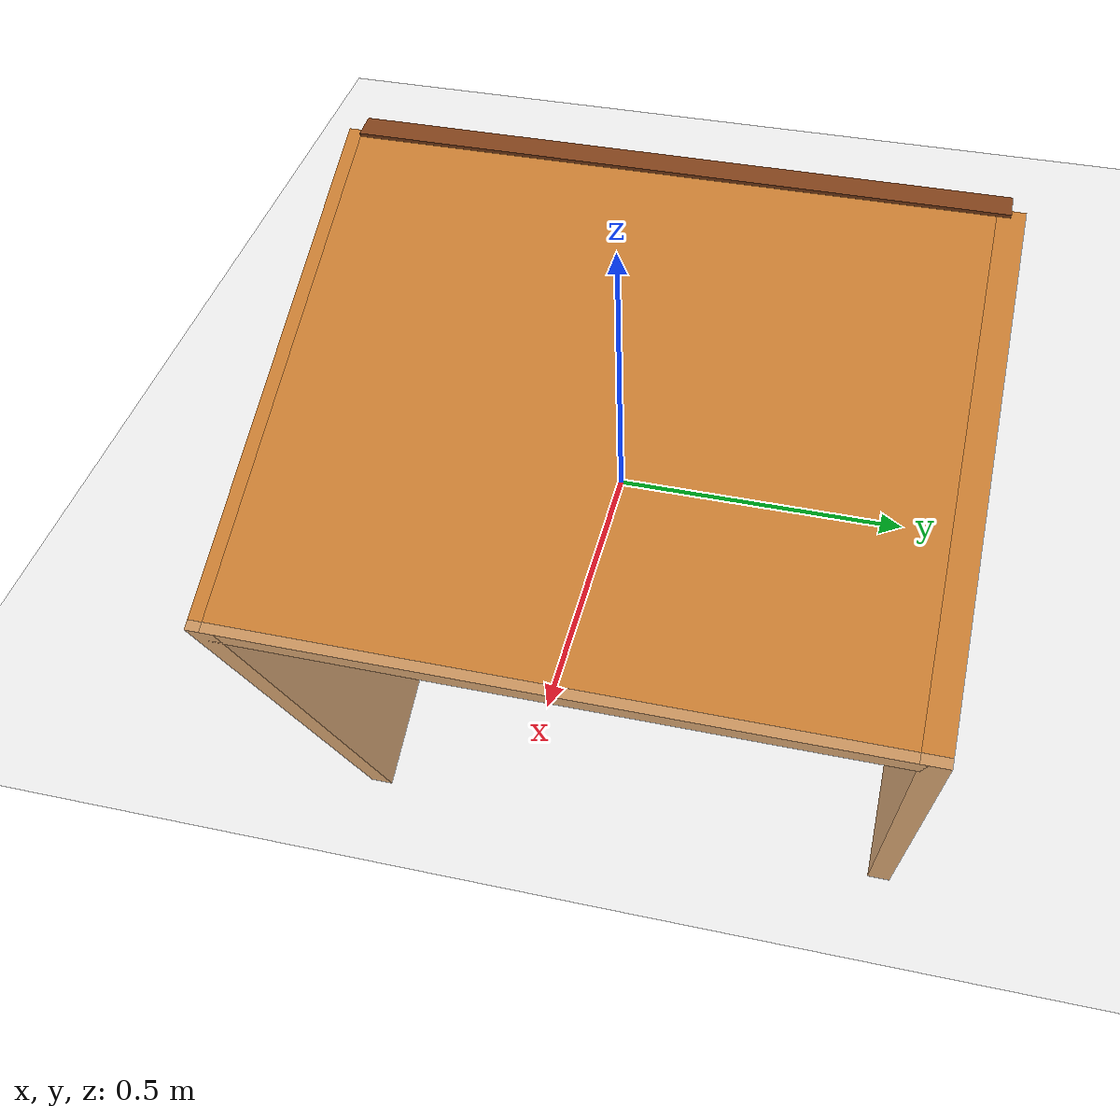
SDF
<?xml version='1.0'?>
<sdf version='1.9'>
  <world name='empty'>
    <physics name='1ms' type='ignored'>
      <max_step_size>0.001</max_step_size>
      <real_time_factor>1</real_time_factor>
      <real_time_update_rate>1000</real_time_update_rate>
    </physics>
    <plugin name='gz::sim::systems::Physics' filename='ignition-gazebo-physics-system' />
    <plugin name='gz::sim::systems::UserCommands' filename='ignition-gazebo-user-commands-system' />
    <plugin name='gz::sim::systems::SceneBroadcaster'
      filename='ignition-gazebo-scene-broadcaster-system' />
    <plugin name='gz::sim::systems::Contact' filename='ignition-gazebo-contact-system' />
    <gravity>0 0 -9.8</gravity>
    <magnetic_field>6e-06 2.3e-05 -4.2e-05</magnetic_field>
    <atmosphere type='adiabatic' />
    <scene>
      <ambient>0.4 0.4 0.4 1</ambient>
      <background>0.7 0.7 0.7 1</background>
      <shadows>true</shadows>
    </scene>

    <model name='ground_plane'>
      <static>true</static>
      <link name='link'>
        <collision name='collision'>
          <geometry>
            <plane>
              <normal>0 0 1</normal>
              <size>100 100</size>
            </plane>
          </geometry>
          <surface>
            <friction>
              <ode />
            </friction>
            <bounce />
            <contact />
          </surface>
        </collision>
        <visual name='visual'>
          <geometry>
            <plane>
              <normal>0 0 1</normal>
              <size>100 100</size>
            </plane>
          </geometry>
          <material>
            <ambient>0.8 0.8 0.8 1</ambient>
            <diffuse>0.8 0.8 0.8 1</diffuse>
            <specular>0.8 0.8 0.8 1</specular>
          </material>
        </visual>
        <pose>0 0 0 0 -0 0</pose>
        <inertial>
          <pose>0 0 0 0 -0 0</pose>
          <mass>1</mass>
          <inertia>
            <ixx>1</ixx>
            <ixy>0</ixy>
            <ixz>0</ixz>
            <iyy>1</iyy>
            <iyz>0</iyz>
            <izz>1</izz>
          </inertia>
        </inertial>
        <enable_wind>false</enable_wind>
      </link>
      <pose>0 0 0 0 -0 0</pose>
      <self_collide>false</self_collide>
    </model>

    <model name='Rampa'>
      <pose>0 0 0.15 0 0.3732 0</pose>
      <link name='Topo'>
        <inertial>
          <inertia>
            <ixx>0.16666</ixx>
            <ixy>0</ixy>
            <ixz>0</ixz>
            <iyy>0.16666</iyy>
            <iyz>0</iyz>
            <izz>0.16666</izz>
          </inertia>
          <mass>1</mass>
          <pose>0 0 0 0 -0 0</pose>
        </inertial>
        <collision name='Topo_collision'>
          <geometry>
            <box>
              <size>1 1.2 0.05</size>
            </box>
          </geometry>
          <surface>
            <friction>
              <ode />
            </friction>
            <bounce />
            <contact />
          </surface>
        </collision>
        <visual name='Topo_visual'>
          <geometry>
            <box>
              <size>1 1.2 0.05</size>
            </box>
          </geometry>
          <material>
            <ambient>0.8 0.5 0.2 1</ambient>
            <diffuse>0.8 0.5 0.2 1</diffuse>
            <specular>0.4 0.2 0.1 1</specular>
          </material>
        </visual>
        <pose>0 0 0 0 -0 0</pose>
        <enable_wind>false</enable_wind>
      </link>
      <static>true</static>
      <self_collide>false</self_collide>

      <link name='Lad1'>
        <pose relative_to='Topo'>0 0.6 -0.575 1.57 0 0</pose>
        <inertial>
          <inertia>
            <ixx>0.16666</ixx>
            <ixy>0</ixy>
            <ixz>0</ixz>
            <iyy>0.16666</iyy>
            <iyz>0</iyz>
            <izz>0.16666</izz>
          </inertia>
          <mass>1</mass>
          <pose>0 0 0 0 -0 0</pose>
        </inertial>
        <collision name='Lad1_collision'>
          <geometry>
            <box>
              <size>1 1.2 0.05</size>
            </box>
          </geometry>
          <surface>
            <friction>
              <ode />
            </friction>
            <bounce />
            <contact />
          </surface>
        </collision>
        <visual name='Lad1_visual'>
          <geometry>
            <box>
              <size>1 1.2 0.05</size>
            </box>
          </geometry>
          <material>
            <ambient>0.8 0.5 0.2 1</ambient>
            <diffuse>0.8 0.5 0.2 1</diffuse>
            <specular>0.4 0.2 0.1 1</specular>
          </material>
        </visual>
        <pose>0 0 0 0 -0 0</pose>
        <enable_wind>false</enable_wind>
      </link>

      <link name='Lad2'>
        <pose relative_to='Topo'>0 -0.6 -0.575 1.57 0 0</pose>
        <inertial>
          <inertia>
            <ixx>0.16666</ixx>
            <ixy>0</ixy>
            <ixz>0</ixz>
            <iyy>0.16666</iyy>
            <iyz>0</iyz>
            <izz>0.16666</izz>
          </inertia>
          <mass>1</mass>
          <pose>0 0 0 0 -0 0</pose>
        </inertial>
        <collision name='Lad2_collision'>
          <geometry>
            <box>
              <size>1 1.2 0.05</size>
            </box>
          </geometry>
          <surface>
            <friction>
              <ode />
            </friction>
            <bounce />
            <contact />
          </surface>
        </collision>
        <visual name='Lad2_visual'>
          <geometry>
            <box>
              <size>1 1.2 0.05</size>
            </box>
          </geometry>
          <material>
            <ambient>0.8 0.5 0.2 1</ambient>
            <diffuse>0.8 0.5 0.2 1</diffuse>
            <specular>0.4 0.2 0.1 1</specular>
          </material>
        </visual>
        <pose>0 0 0 0 -0 0</pose>
        <enable_wind>false</enable_wind>
      </link>

      <link name='Fre'>
        <pose relative_to='Topo'>-0.35 0 -0.45 0 -1.9 0</pose>
        <inertial>
          <inertia>
            <ixx>0.16666</ixx>
            <ixy>0</ixy>
            <ixz>0</ixz>
            <iyy>0.16666</iyy>
            <iyz>0</iyz>
            <izz>0.16666</izz>
          </inertia>
          <mass>1</mass>
          <pose>0 0 0 0 -0 0</pose>
        </inertial>
        <collision name='Fre_collision'>
          <geometry>
            <box>
              <size>1 1.2 0.05</size>
            </box>
          </geometry>
          <surface>
            <friction>
              <ode />
            </friction>
            <bounce />
            <contact />
          </surface>
        </collision>
        <visual name='Fre_visual'>
          <geometry>
            <box>
              <size>1 1.2 0.05</size>
            </box>
          </geometry>
          <material>
            <ambient>0.5 0.25 0.1 1</ambient>
            <diffuse>0.5 0.25 0.1 1</diffuse>
            <specular>0.3 0.15 0.05 1</specular>
          </material>
        </visual>
        <pose>0 0 0 0 -0 0</pose>
        <enable_wind>false</enable_wind>
      </link>
    </model>

    <light name='sun' type='directional'>
      <pose>0 0 10 0 -0 0</pose>
      <cast_shadows>true</cast_shadows>
      <intensity>1</intensity>
      <direction>-0.5 0.1 -0.9</direction>
      <diffuse>0.8 0.8 0.8 1</diffuse>
      <specular>0.2 0.2 0.2 1</specular>
      <attenuation>
        <range>1000</range>
        <linear>0.01</linear>
        <constant>0.90000000000000002</constant>
        <quadratic>0.001</quadratic>
      </attenuation>
      <spot>
        <inner_angle>0</inner_angle>
        <outer_angle>0</outer_angle>
        <falloff>0</falloff>
      </spot>
    </light>
  </world>
</sdf>
